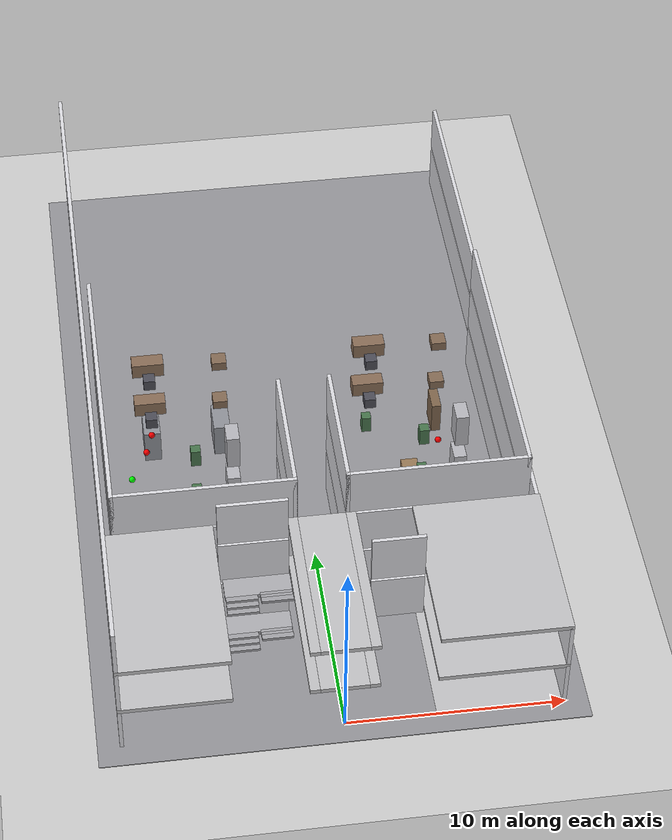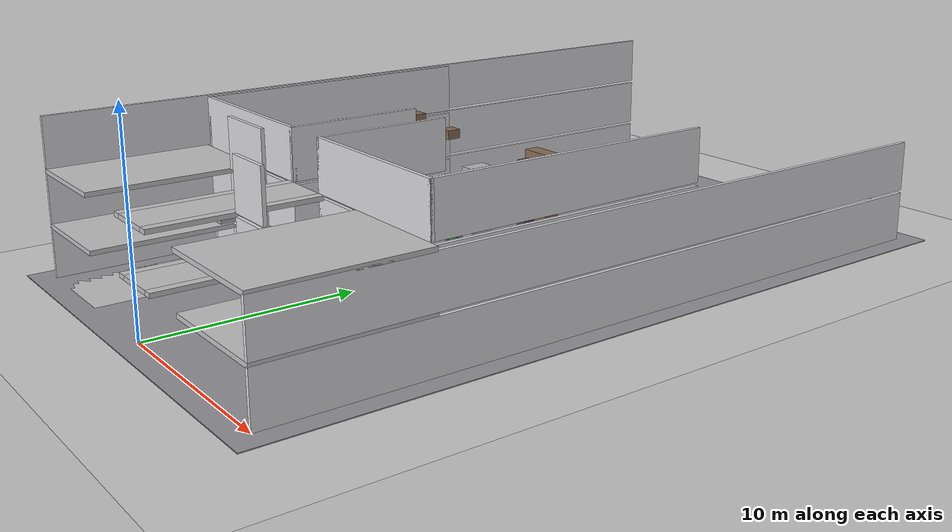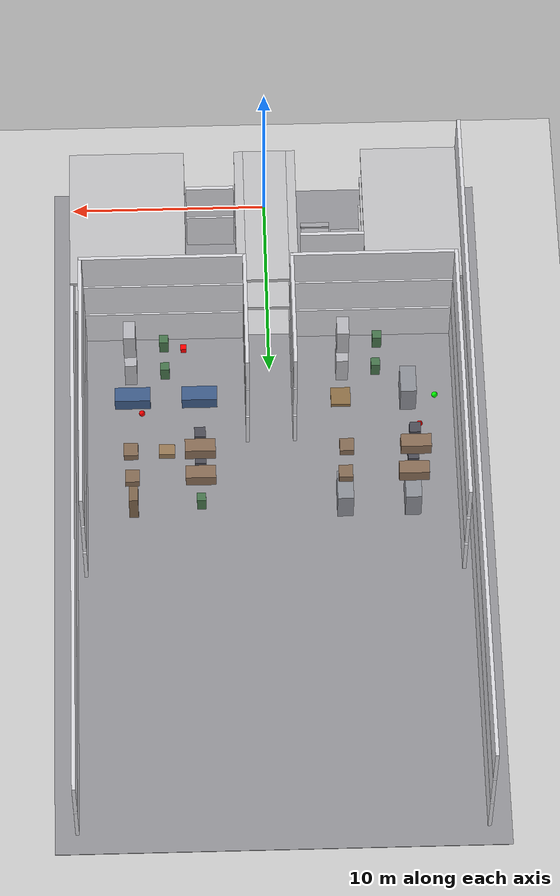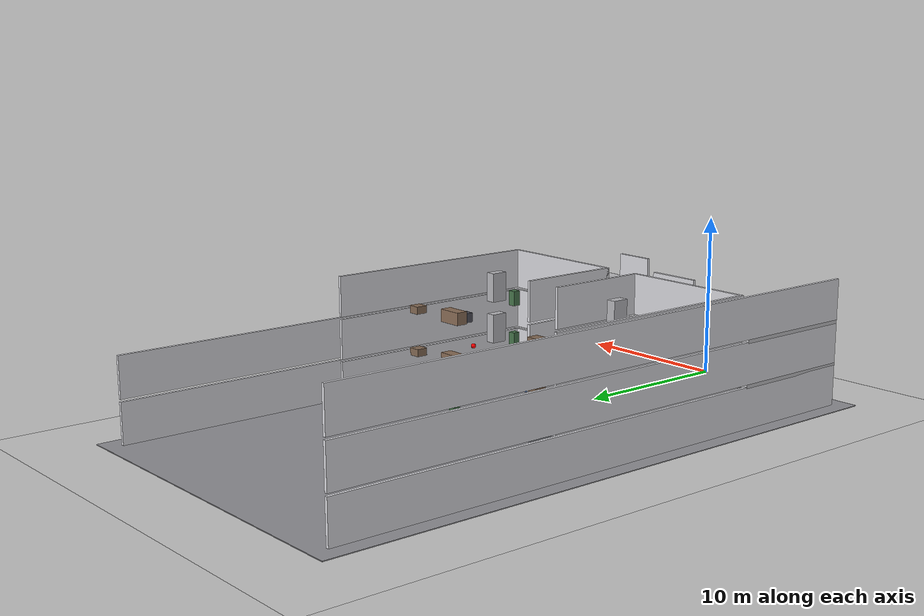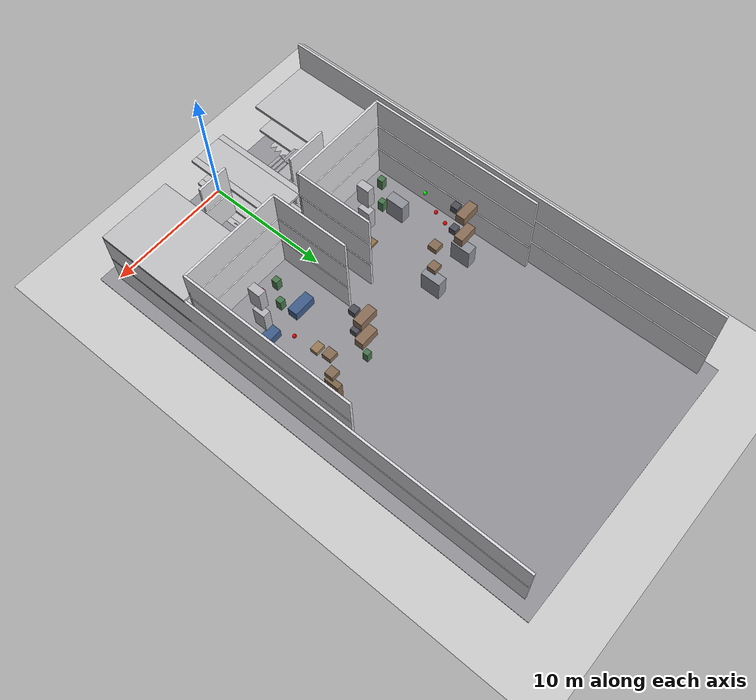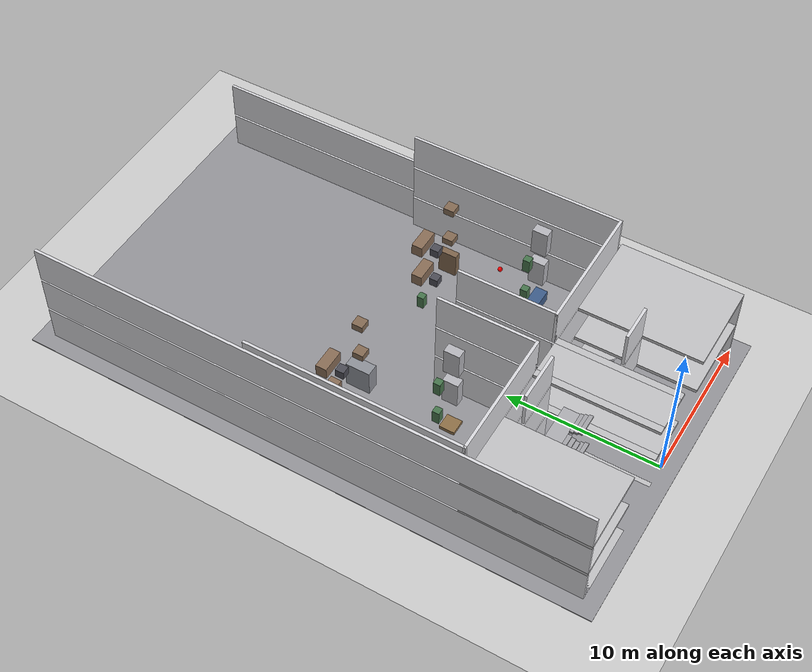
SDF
<sdf version="1.7">
 <world name="generated_world">
  <include><uri>model://sun</uri></include>
  <include><uri>model://ground_plane</uri></include>
  <model name="generated_building">
   <static>true</static>
   <link name="foundation">
    <pose>0.0000 18.0000 -0.1500 0.0000 0.0000 0.0000</pose>
    <collision name="foundation_collision">
     <geometry><box><size>22.0000 38.0000 0.3000</size></box></geometry>
    </collision>
    <visual name="foundation_visual">
     <geometry><box><size>22.0000 38.0000 0.3000</size></box></geometry>
     <material><ambient>0.58 0.58 0.60 1</ambient><diffuse>0.58 0.58 0.60 1</diffuse></material>
    </visual>
    <gravity>false</gravity>
   </link>
   <link name="slab_floor_0_1">
    <pose>-7.4700 3.9250 -0.1100 0.0000 0.0000 0.0000</pose>
    <collision name="slab_floor_0_1_collision">
     <geometry><box><size>5.0600 7.8500 0.2200</size></box></geometry>
    </collision>
    <visual name="slab_floor_0_1_visual">
     <geometry><box><size>5.0600 7.8500 0.2200</size></box></geometry>
     <material><ambient>0.76 0.76 0.77 1</ambient><diffuse>0.76 0.76 0.77 1</diffuse></material>
    </visual>
    <gravity>false</gravity>
   </link>
   <link name="slab_floor_0_2">
    <pose>-1.3300 3.9250 -0.1100 0.0000 0.0000 0.0000</pose>
    <collision name="slab_floor_0_2_collision">
     <geometry><box><size>0.4600 7.8500 0.2200</size></box></geometry>
    </collision>
    <visual name="slab_floor_0_2_visual">
     <geometry><box><size>0.4600 7.8500 0.2200</size></box></geometry>
     <material><ambient>0.76 0.76 0.77 1</ambient><diffuse>0.76 0.76 0.77 1</diffuse></material>
    </visual>
    <gravity>false</gravity>
   </link>
   <link name="slab_floor_0_3">
    <pose>0.0000 3.9250 -0.1100 0.0000 0.0000 0.0000</pose>
    <collision name="slab_floor_0_3_collision">
     <geometry><box><size>2.2000 7.8500 0.2200</size></box></geometry>
    </collision>
    <visual name="slab_floor_0_3_visual">
     <geometry><box><size>2.2000 7.8500 0.2200</size></box></geometry>
     <material><ambient>0.76 0.76 0.77 1</ambient><diffuse>0.76 0.76 0.77 1</diffuse></material>
    </visual>
    <gravity>false</gravity>
   </link>
   <link name="slab_floor_0_4">
    <pose>1.3300 3.9250 -0.1100 0.0000 0.0000 0.0000</pose>
    <collision name="slab_floor_0_4_collision">
     <geometry><box><size>0.4600 7.8500 0.2200</size></box></geometry>
    </collision>
    <visual name="slab_floor_0_4_visual">
     <geometry><box><size>0.4600 7.8500 0.2200</size></box></geometry>
     <material><ambient>0.76 0.76 0.77 1</ambient><diffuse>0.76 0.76 0.77 1</diffuse></material>
    </visual>
    <gravity>false</gravity>
   </link>
   <link name="slab_floor_0_5">
    <pose>7.0700 3.9250 -0.1100 0.0000 0.0000 0.0000</pose>
    <collision name="slab_floor_0_5_collision">
     <geometry><box><size>5.8600 7.8500 0.2200</size></box></geometry>
    </collision>
    <visual name="slab_floor_0_5_visual">
     <geometry><box><size>5.8600 7.8500 0.2200</size></box></geometry>
     <material><ambient>0.76 0.76 0.77 1</ambient><diffuse>0.76 0.76 0.77 1</diffuse></material>
    </visual>
    <gravity>false</gravity>
   </link>
   <link name="exterior_west_floor_0">
    <pose>-9.9100 18.0000 1.2250 0.0000 0.0000 0.0000</pose>
    <collision name="exterior_west_floor_0_collision">
     <geometry><box><size>0.1800 36.0000 2.4500</size></box></geometry>
    </collision>
    <visual name="exterior_west_floor_0_visual">
     <geometry><box><size>0.1800 36.0000 2.4500</size></box></geometry>
     <material><ambient>0.86 0.86 0.88 1</ambient><diffuse>0.86 0.86 0.88 1</diffuse></material>
    </visual>
    <gravity>false</gravity>
   </link>
   <link name="exterior_east_floor_0">
    <pose>9.9100 18.0000 1.2250 0.0000 0.0000 0.0000</pose>
    <collision name="exterior_east_floor_0_collision">
     <geometry><box><size>0.1800 36.0000 2.4500</size></box></geometry>
    </collision>
    <visual name="exterior_east_floor_0_visual">
     <geometry><box><size>0.1800 36.0000 2.4500</size></box></geometry>
     <material><ambient>0.86 0.86 0.88 1</ambient><diffuse>0.86 0.86 0.88 1</diffuse></material>
    </visual>
    <gravity>false</gravity>
   </link>
   <link name="floor_0_room_0_corridor_wall_lower">
    <pose>-1.1900 11.0575 1.2250 0.0000 0.0000 0.0000</pose>
    <collision name="floor_0_room_0_corridor_wall_lower_collision">
     <geometry><box><size>0.1800 6.4150 2.4500</size></box></geometry>
    </collision>
    <visual name="floor_0_room_0_corridor_wall_lower_visual">
     <geometry><box><size>0.1800 6.4150 2.4500</size></box></geometry>
     <material><ambient>0.86 0.86 0.88 1</ambient><diffuse>0.86 0.86 0.88 1</diffuse></material>
    </visual>
    <gravity>false</gravity>
   </link>
   <link name="floor_0_room_0_west_wall">
    <pose>-9.4100 14.8650 1.2250 0.0000 0.0000 0.0000</pose>
    <collision name="floor_0_room_0_west_wall_collision">
     <geometry><box><size>0.1800 14.0300 2.4500</size></box></geometry>
    </collision>
    <visual name="floor_0_room_0_west_wall_visual">
     <geometry><box><size>0.1800 14.0300 2.4500</size></box></geometry>
     <material><ambient>0.86 0.86 0.88 1</ambient><diffuse>0.86 0.86 0.88 1</diffuse></material>
    </visual>
    <gravity>false</gravity>
   </link>
   <link name="floor_0_room_0_south_wall">
    <pose>-5.3000 7.9400 1.2250 0.0000 0.0000 0.0000</pose>
    <collision name="floor_0_room_0_south_wall_collision">
     <geometry><box><size>8.4000 0.1800 2.4500</size></box></geometry>
    </collision>
    <visual name="floor_0_room_0_south_wall_visual">
     <geometry><box><size>8.4000 0.1800 2.4500</size></box></geometry>
     <material><ambient>0.86 0.86 0.88 1</ambient><diffuse>0.86 0.86 0.88 1</diffuse></material>
    </visual>
    <gravity>false</gravity>
   </link>
   <link name="floor_0_room_1_corridor_wall_lower">
    <pose>1.1900 11.0575 1.2250 0.0000 0.0000 0.0000</pose>
    <collision name="floor_0_room_1_corridor_wall_lower_collision">
     <geometry><box><size>0.1800 6.4150 2.4500</size></box></geometry>
    </collision>
    <visual name="floor_0_room_1_corridor_wall_lower_visual">
     <geometry><box><size>0.1800 6.4150 2.4500</size></box></geometry>
     <material><ambient>0.86 0.86 0.88 1</ambient><diffuse>0.86 0.86 0.88 1</diffuse></material>
    </visual>
    <gravity>false</gravity>
   </link>
   <link name="floor_0_room_1_east_wall">
    <pose>9.4100 14.8650 1.2250 0.0000 0.0000 0.0000</pose>
    <collision name="floor_0_room_1_east_wall_collision">
     <geometry><box><size>0.1800 14.0300 2.4500</size></box></geometry>
    </collision>
    <visual name="floor_0_room_1_east_wall_visual">
     <geometry><box><size>0.1800 14.0300 2.4500</size></box></geometry>
     <material><ambient>0.86 0.86 0.88 1</ambient><diffuse>0.86 0.86 0.88 1</diffuse></material>
    </visual>
    <gravity>false</gravity>
   </link>
   <link name="floor_0_room_1_south_wall">
    <pose>5.3000 7.9400 1.2250 0.0000 0.0000 0.0000</pose>
    <collision name="floor_0_room_1_south_wall_collision">
     <geometry><box><size>8.4000 0.1800 2.4500</size></box></geometry>
    </collision>
    <visual name="floor_0_room_1_south_wall_visual">
     <geometry><box><size>8.4000 0.1800 2.4500</size></box></geometry>
     <material><ambient>0.86 0.86 0.88 1</ambient><diffuse>0.86 0.86 0.88 1</diffuse></material>
    </visual>
    <gravity>false</gravity>
   </link>
   <link name="stair_core_floor_0_north">
    <pose>-3.2500 6.7600 1.2250 0.0000 0.0000 0.0000</pose>
    <collision name="stair_core_floor_0_north_collision">
     <geometry><box><size>3.2000 0.1800 2.4500</size></box></geometry>
    </collision>
    <visual name="stair_core_floor_0_north_visual">
     <geometry><box><size>3.2000 0.1800 2.4500</size></box></geometry>
     <material><ambient>0.86 0.86 0.88 1</ambient><diffuse>0.86 0.86 0.88 1</diffuse></material>
    </visual>
    <gravity>false</gravity>
   </link>
   <link name="floor_0_room_0_rack_a">
    <pose>-7.0000 17.9225 0.9000 0.0000 0.0000 0.0000</pose>
    <collision name="floor_0_room_0_rack_a_collision">
     <geometry><box><size>0.8000 1.6000 1.8000</size></box></geometry>
    </collision>
    <visual name="floor_0_room_0_rack_a_visual">
     <geometry><box><size>0.8000 1.6000 1.8000</size></box></geometry>
     <material><ambient>0.56 0.57 0.60 1</ambient><diffuse>0.56 0.57 0.60 1</diffuse></material>
    </visual>
    <gravity>false</gravity>
   </link>
   <link name="floor_0_room_0_rack_b">
    <pose>-3.6000 17.9225 0.9000 0.0000 0.0000 0.0000</pose>
    <collision name="floor_0_room_0_rack_b_collision">
     <geometry><box><size>0.8000 1.6000 1.8000</size></box></geometry>
    </collision>
    <visual name="floor_0_room_0_rack_b_visual">
     <geometry><box><size>0.8000 1.6000 1.8000</size></box></geometry>
     <material><ambient>0.56 0.57 0.60 1</ambient><diffuse>0.56 0.57 0.60 1</diffuse></material>
    </visual>
    <gravity>false</gravity>
   </link>
   <link name="floor_0_room_0_rack_c">
    <pose>-7.0000 11.8075 0.9000 0.0000 0.0000 0.0000</pose>
    <collision name="floor_0_room_0_rack_c_collision">
     <geometry><box><size>0.8000 1.5000 1.8000</size></box></geometry>
    </collision>
    <visual name="floor_0_room_0_rack_c_visual">
     <geometry><box><size>0.8000 1.5000 1.8000</size></box></geometry>
     <material><ambient>0.56 0.57 0.60 1</ambient><diffuse>0.56 0.57 0.60 1</diffuse></material>
    </visual>
    <gravity>false</gravity>
   </link>
   <link name="floor_0_room_0_pallet">
    <pose>-3.6000 11.8075 0.1200 0.0000 0.0000 0.0000</pose>
    <collision name="floor_0_room_0_pallet_collision">
     <geometry><box><size>1.0000 1.0000 0.2400</size></box></geometry>
    </collision>
    <visual name="floor_0_room_0_pallet_visual">
     <geometry><box><size>1.0000 1.0000 0.2400</size></box></geometry>
     <material><ambient>0.56 0.44 0.28 1</ambient><diffuse>0.56 0.44 0.28 1</diffuse></material>
    </visual>
    <gravity>false</gravity>
   </link>
   <link name="floor_0_room_1_sofa_a">
    <pose>3.6000 11.8075 0.4500 0.0000 0.0000 0.0000</pose>
    <collision name="floor_0_room_1_sofa_a_collision">
     <geometry><box><size>1.8000 0.8000 0.8000</size></box></geometry>
    </collision>
    <visual name="floor_0_room_1_sofa_a_visual">
     <geometry><box><size>1.8000 0.8000 0.8000</size></box></geometry>
     <material><ambient>0.24 0.36 0.54 1</ambient><diffuse>0.24 0.36 0.54 1</diffuse></material>
    </visual>
    <gravity>false</gravity>
   </link>
   <link name="floor_0_room_1_sofa_b">
    <pose>7.0000 11.8075 0.4500 0.0000 0.0000 3.1400</pose>
    <collision name="floor_0_room_1_sofa_b_collision">
     <geometry><box><size>1.8000 0.8000 0.8000</size></box></geometry>
    </collision>
    <visual name="floor_0_room_1_sofa_b_visual">
     <geometry><box><size>1.8000 0.8000 0.8000</size></box></geometry>
     <material><ambient>0.24 0.36 0.54 1</ambient><diffuse>0.24 0.36 0.54 1</diffuse></material>
    </visual>
    <gravity>false</gravity>
   </link>
   <link name="floor_0_room_1_coffee_table">
    <pose>5.3000 14.8650 0.2500 0.0000 0.0000 0.0000</pose>
    <collision name="floor_0_room_1_coffee_table_collision">
     <geometry><box><size>0.8000 0.6000 0.4000</size></box></geometry>
    </collision>
    <visual name="floor_0_room_1_coffee_table_visual">
     <geometry><box><size>0.8000 0.6000 0.4000</size></box></geometry>
     <material><ambient>0.60 0.48 0.34 1</ambient><diffuse>0.60 0.48 0.34 1</diffuse></material>
    </visual>
    <gravity>false</gravity>
   </link>
   <link name="floor_0_room_1_bookshelf">
    <pose>7.0000 17.9225 0.8500 0.0000 0.0000 0.0000</pose>
    <collision name="floor_0_room_1_bookshelf_collision">
     <geometry><box><size>0.4500 1.2000 1.7000</size></box></geometry>
    </collision>
    <visual name="floor_0_room_1_bookshelf_visual">
     <geometry><box><size>0.4500 1.2000 1.7000</size></box></geometry>
     <material><ambient>0.50 0.40 0.30 1</ambient><diffuse>0.50 0.40 0.30 1</diffuse></material>
    </visual>
    <gravity>false</gravity>
   </link>
   <link name="floor_0_room_1_planter">
    <pose>3.6000 17.9225 0.4500 0.0000 0.0000 0.0000</pose>
    <collision name="floor_0_room_1_planter_collision">
     <geometry><box><size>0.4500 0.4500 0.9000</size></box></geometry>
    </collision>
    <visual name="floor_0_room_1_planter_visual">
     <geometry><box><size>0.4500 0.4500 0.9000</size></box></geometry>
     <material><ambient>0.28 0.46 0.30 1</ambient><diffuse>0.28 0.46 0.30 1</diffuse></material>
    </visual>
    <gravity>false</gravity>
   </link>
   <link name="slab_floor_1_1">
    <pose>-7.4700 3.9250 2.4900 0.0000 0.0000 0.0000</pose>
    <collision name="slab_floor_1_1_collision">
     <geometry><box><size>5.0600 7.8500 0.2200</size></box></geometry>
    </collision>
    <visual name="slab_floor_1_1_visual">
     <geometry><box><size>5.0600 7.8500 0.2200</size></box></geometry>
     <material><ambient>0.76 0.76 0.77 1</ambient><diffuse>0.76 0.76 0.77 1</diffuse></material>
    </visual>
    <gravity>false</gravity>
   </link>
   <link name="slab_floor_1_2">
    <pose>-1.3300 3.9250 2.4900 0.0000 0.0000 0.0000</pose>
    <collision name="slab_floor_1_2_collision">
     <geometry><box><size>0.4600 7.8500 0.2200</size></box></geometry>
    </collision>
    <visual name="slab_floor_1_2_visual">
     <geometry><box><size>0.4600 7.8500 0.2200</size></box></geometry>
     <material><ambient>0.76 0.76 0.77 1</ambient><diffuse>0.76 0.76 0.77 1</diffuse></material>
    </visual>
    <gravity>false</gravity>
   </link>
   <link name="slab_floor_1_3">
    <pose>0.0000 3.9250 2.4900 0.0000 0.0000 0.0000</pose>
    <collision name="slab_floor_1_3_collision">
     <geometry><box><size>2.2000 7.8500 0.2200</size></box></geometry>
    </collision>
    <visual name="slab_floor_1_3_visual">
     <geometry><box><size>2.2000 7.8500 0.2200</size></box></geometry>
     <material><ambient>0.76 0.76 0.77 1</ambient><diffuse>0.76 0.76 0.77 1</diffuse></material>
    </visual>
    <gravity>false</gravity>
   </link>
   <link name="slab_floor_1_4">
    <pose>1.3300 3.9250 2.4900 0.0000 0.0000 0.0000</pose>
    <collision name="slab_floor_1_4_collision">
     <geometry><box><size>0.4600 7.8500 0.2200</size></box></geometry>
    </collision>
    <visual name="slab_floor_1_4_visual">
     <geometry><box><size>0.4600 7.8500 0.2200</size></box></geometry>
     <material><ambient>0.76 0.76 0.77 1</ambient><diffuse>0.76 0.76 0.77 1</diffuse></material>
    </visual>
    <gravity>false</gravity>
   </link>
   <link name="slab_floor_1_5">
    <pose>7.0700 3.9250 2.4900 0.0000 0.0000 0.0000</pose>
    <collision name="slab_floor_1_5_collision">
     <geometry><box><size>5.8600 7.8500 0.2200</size></box></geometry>
    </collision>
    <visual name="slab_floor_1_5_visual">
     <geometry><box><size>5.8600 7.8500 0.2200</size></box></geometry>
     <material><ambient>0.76 0.76 0.77 1</ambient><diffuse>0.76 0.76 0.77 1</diffuse></material>
    </visual>
    <gravity>false</gravity>
   </link>
   <link name="exterior_west_floor_1">
    <pose>-9.9100 18.0000 3.8250 0.0000 0.0000 0.0000</pose>
    <collision name="exterior_west_floor_1_collision">
     <geometry><box><size>0.1800 36.0000 2.4500</size></box></geometry>
    </collision>
    <visual name="exterior_west_floor_1_visual">
     <geometry><box><size>0.1800 36.0000 2.4500</size></box></geometry>
     <material><ambient>0.86 0.86 0.88 1</ambient><diffuse>0.86 0.86 0.88 1</diffuse></material>
    </visual>
    <gravity>false</gravity>
   </link>
   <link name="exterior_east_floor_1">
    <pose>9.9100 18.0000 3.8250 0.0000 0.0000 0.0000</pose>
    <collision name="exterior_east_floor_1_collision">
     <geometry><box><size>0.1800 36.0000 2.4500</size></box></geometry>
    </collision>
    <visual name="exterior_east_floor_1_visual">
     <geometry><box><size>0.1800 36.0000 2.4500</size></box></geometry>
     <material><ambient>0.86 0.86 0.88 1</ambient><diffuse>0.86 0.86 0.88 1</diffuse></material>
    </visual>
    <gravity>false</gravity>
   </link>
   <link name="floor_1_room_0_corridor_wall_lower">
    <pose>-1.1900 11.0575 3.8250 0.0000 0.0000 0.0000</pose>
    <collision name="floor_1_room_0_corridor_wall_lower_collision">
     <geometry><box><size>0.1800 6.4150 2.4500</size></box></geometry>
    </collision>
    <visual name="floor_1_room_0_corridor_wall_lower_visual">
     <geometry><box><size>0.1800 6.4150 2.4500</size></box></geometry>
     <material><ambient>0.86 0.86 0.88 1</ambient><diffuse>0.86 0.86 0.88 1</diffuse></material>
    </visual>
    <gravity>false</gravity>
   </link>
   <link name="floor_1_room_0_west_wall">
    <pose>-9.4100 14.8650 3.8250 0.0000 0.0000 0.0000</pose>
    <collision name="floor_1_room_0_west_wall_collision">
     <geometry><box><size>0.1800 14.0300 2.4500</size></box></geometry>
    </collision>
    <visual name="floor_1_room_0_west_wall_visual">
     <geometry><box><size>0.1800 14.0300 2.4500</size></box></geometry>
     <material><ambient>0.86 0.86 0.88 1</ambient><diffuse>0.86 0.86 0.88 1</diffuse></material>
    </visual>
    <gravity>false</gravity>
   </link>
   <link name="floor_1_room_0_south_wall">
    <pose>-5.3000 7.9400 3.8250 0.0000 0.0000 0.0000</pose>
    <collision name="floor_1_room_0_south_wall_collision">
     <geometry><box><size>8.4000 0.1800 2.4500</size></box></geometry>
    </collision>
    <visual name="floor_1_room_0_south_wall_visual">
     <geometry><box><size>8.4000 0.1800 2.4500</size></box></geometry>
     <material><ambient>0.86 0.86 0.88 1</ambient><diffuse>0.86 0.86 0.88 1</diffuse></material>
    </visual>
    <gravity>false</gravity>
   </link>
   <link name="floor_1_room_1_corridor_wall_lower">
    <pose>1.1900 11.0575 3.8250 0.0000 0.0000 0.0000</pose>
    <collision name="floor_1_room_1_corridor_wall_lower_collision">
     <geometry><box><size>0.1800 6.4150 2.4500</size></box></geometry>
    </collision>
    <visual name="floor_1_room_1_corridor_wall_lower_visual">
     <geometry><box><size>0.1800 6.4150 2.4500</size></box></geometry>
     <material><ambient>0.86 0.86 0.88 1</ambient><diffuse>0.86 0.86 0.88 1</diffuse></material>
    </visual>
    <gravity>false</gravity>
   </link>
   <link name="floor_1_room_1_east_wall">
    <pose>9.4100 14.8650 3.8250 0.0000 0.0000 0.0000</pose>
    <collision name="floor_1_room_1_east_wall_collision">
     <geometry><box><size>0.1800 14.0300 2.4500</size></box></geometry>
    </collision>
    <visual name="floor_1_room_1_east_wall_visual">
     <geometry><box><size>0.1800 14.0300 2.4500</size></box></geometry>
     <material><ambient>0.86 0.86 0.88 1</ambient><diffuse>0.86 0.86 0.88 1</diffuse></material>
    </visual>
    <gravity>false</gravity>
   </link>
   <link name="floor_1_room_1_south_wall">
    <pose>5.3000 7.9400 3.8250 0.0000 0.0000 0.0000</pose>
    <collision name="floor_1_room_1_south_wall_collision">
     <geometry><box><size>8.4000 0.1800 2.4500</size></box></geometry>
    </collision>
    <visual name="floor_1_room_1_south_wall_visual">
     <geometry><box><size>8.4000 0.1800 2.4500</size></box></geometry>
     <material><ambient>0.86 0.86 0.88 1</ambient><diffuse>0.86 0.86 0.88 1</diffuse></material>
    </visual>
    <gravity>false</gravity>
   </link>
   <link name="stair_core_floor_1_north">
    <pose>-3.2500 6.7600 3.8250 0.0000 0.0000 0.0000</pose>
    <collision name="stair_core_floor_1_north_collision">
     <geometry><box><size>3.2000 0.1800 2.4500</size></box></geometry>
    </collision>
    <visual name="stair_core_floor_1_north_visual">
     <geometry><box><size>3.2000 0.1800 2.4500</size></box></geometry>
     <material><ambient>0.86 0.86 0.88 1</ambient><diffuse>0.86 0.86 0.88 1</diffuse></material>
    </visual>
    <gravity>false</gravity>
   </link>
   <link name="elevator_core_floor_1_north">
    <pose>2.8500 3.8600 3.8250 0.0000 0.0000 0.0000</pose>
    <collision name="elevator_core_floor_1_north_collision">
     <geometry><box><size>2.4000 0.1800 2.4500</size></box></geometry>
    </collision>
    <visual name="elevator_core_floor_1_north_visual">
     <geometry><box><size>2.4000 0.1800 2.4500</size></box></geometry>
     <material><ambient>0.86 0.86 0.88 1</ambient><diffuse>0.86 0.86 0.88 1</diffuse></material>
    </visual>
    <gravity>false</gravity>
   </link>
   <link name="floor_1_room_0_desk">
    <pose>-7.0000 17.9225 3.0500 0.0000 0.0000 0.0000</pose>
    <collision name="floor_1_room_0_desk_collision">
     <geometry><box><size>1.5000 0.7000 0.7500</size></box></geometry>
    </collision>
    <visual name="floor_1_room_0_desk_visual">
     <geometry><box><size>1.5000 0.7000 0.7500</size></box></geometry>
     <material><ambient>0.54 0.43 0.34 1</ambient><diffuse>0.54 0.43 0.34 1</diffuse></material>
    </visual>
    <gravity>false</gravity>
   </link>
   <link name="floor_1_room_0_chair">
    <pose>-7.0000 17.0225 2.8800 0.0000 0.0000 0.0000</pose>
    <collision name="floor_1_room_0_chair_collision">
     <geometry><box><size>0.5500 0.5500 0.5500</size></box></geometry>
    </collision>
    <visual name="floor_1_room_0_chair_visual">
     <geometry><box><size>0.5500 0.5500 0.5500</size></box></geometry>
     <material><ambient>0.30 0.30 0.34 1</ambient><diffuse>0.30 0.30 0.34 1</diffuse></material>
    </visual>
    <gravity>false</gravity>
   </link>
   <link name="floor_1_room_0_cabinet">
    <pose>-3.6000 11.8075 3.5000 0.0000 0.0000 0.0000</pose>
    <collision name="floor_1_room_0_cabinet_collision">
     <geometry><box><size>0.6000 1.0000 1.8000</size></box></geometry>
    </collision>
    <visual name="floor_1_room_0_cabinet_visual">
     <geometry><box><size>0.6000 1.0000 1.8000</size></box></geometry>
     <material><ambient>0.72 0.72 0.74 1</ambient><diffuse>0.72 0.72 0.74 1</diffuse></material>
    </visual>
    <gravity>false</gravity>
   </link>
   <link name="floor_1_room_0_side_table">
    <pose>-3.6000 17.9225 2.9200 0.0000 0.0000 0.0000</pose>
    <collision name="floor_1_room_0_side_table_collision">
     <geometry><box><size>0.7000 0.7000 0.4500</size></box></geometry>
    </collision>
    <visual name="floor_1_room_0_side_table_visual">
     <geometry><box><size>0.7000 0.7000 0.4500</size></box></geometry>
     <material><ambient>0.52 0.42 0.33 1</ambient><diffuse>0.52 0.42 0.33 1</diffuse></material>
    </visual>
    <gravity>false</gravity>
   </link>
   <link name="floor_1_room_0_planter">
    <pose>-5.3000 11.8075 3.0500 0.0000 0.0000 0.0000</pose>
    <collision name="floor_1_room_0_planter_collision">
     <geometry><box><size>0.4500 0.4500 0.9000</size></box></geometry>
    </collision>
    <visual name="floor_1_room_0_planter_visual">
     <geometry><box><size>0.4500 0.4500 0.9000</size></box></geometry>
     <material><ambient>0.28 0.46 0.30 1</ambient><diffuse>0.28 0.46 0.30 1</diffuse></material>
    </visual>
    <gravity>false</gravity>
   </link>
   <link name="floor_1_room_1_desk">
    <pose>3.6000 17.9225 3.0500 0.0000 0.0000 0.0000</pose>
    <collision name="floor_1_room_1_desk_collision">
     <geometry><box><size>1.5000 0.7000 0.7500</size></box></geometry>
    </collision>
    <visual name="floor_1_room_1_desk_visual">
     <geometry><box><size>1.5000 0.7000 0.7500</size></box></geometry>
     <material><ambient>0.54 0.43 0.34 1</ambient><diffuse>0.54 0.43 0.34 1</diffuse></material>
    </visual>
    <gravity>false</gravity>
   </link>
   <link name="floor_1_room_1_chair">
    <pose>3.6000 17.0225 2.8800 0.0000 0.0000 0.0000</pose>
    <collision name="floor_1_room_1_chair_collision">
     <geometry><box><size>0.5500 0.5500 0.5500</size></box></geometry>
    </collision>
    <visual name="floor_1_room_1_chair_visual">
     <geometry><box><size>0.5500 0.5500 0.5500</size></box></geometry>
     <material><ambient>0.30 0.30 0.34 1</ambient><diffuse>0.30 0.30 0.34 1</diffuse></material>
    </visual>
    <gravity>false</gravity>
   </link>
   <link name="floor_1_room_1_cabinet">
    <pose>7.0000 11.8075 3.5000 0.0000 0.0000 0.0000</pose>
    <collision name="floor_1_room_1_cabinet_collision">
     <geometry><box><size>0.6000 1.0000 1.8000</size></box></geometry>
    </collision>
    <visual name="floor_1_room_1_cabinet_visual">
     <geometry><box><size>0.6000 1.0000 1.8000</size></box></geometry>
     <material><ambient>0.72 0.72 0.74 1</ambient><diffuse>0.72 0.72 0.74 1</diffuse></material>
    </visual>
    <gravity>false</gravity>
   </link>
   <link name="floor_1_room_1_side_table">
    <pose>7.0000 17.9225 2.9200 0.0000 0.0000 0.0000</pose>
    <collision name="floor_1_room_1_side_table_collision">
     <geometry><box><size>0.7000 0.7000 0.4500</size></box></geometry>
    </collision>
    <visual name="floor_1_room_1_side_table_visual">
     <geometry><box><size>0.7000 0.7000 0.4500</size></box></geometry>
     <material><ambient>0.52 0.42 0.33 1</ambient><diffuse>0.52 0.42 0.33 1</diffuse></material>
    </visual>
    <gravity>false</gravity>
   </link>
   <link name="floor_1_room_1_planter">
    <pose>5.3000 11.8075 3.0500 0.0000 0.0000 0.0000</pose>
    <collision name="floor_1_room_1_planter_collision">
     <geometry><box><size>0.4500 0.4500 0.9000</size></box></geometry>
    </collision>
    <visual name="floor_1_room_1_planter_visual">
     <geometry><box><size>0.4500 0.4500 0.9000</size></box></geometry>
     <material><ambient>0.28 0.46 0.30 1</ambient><diffuse>0.28 0.46 0.30 1</diffuse></material>
    </visual>
    <gravity>false</gravity>
   </link>
   <link name="slab_floor_2_1">
    <pose>-7.4700 3.9250 5.0900 0.0000 0.0000 0.0000</pose>
    <collision name="slab_floor_2_1_collision">
     <geometry><box><size>5.0600 7.8500 0.2200</size></box></geometry>
    </collision>
    <visual name="slab_floor_2_1_visual">
     <geometry><box><size>5.0600 7.8500 0.2200</size></box></geometry>
     <material><ambient>0.76 0.76 0.77 1</ambient><diffuse>0.76 0.76 0.77 1</diffuse></material>
    </visual>
    <gravity>false</gravity>
   </link>
   <link name="slab_floor_2_2">
    <pose>-1.3300 3.9250 5.0900 0.0000 0.0000 0.0000</pose>
    <collision name="slab_floor_2_2_collision">
     <geometry><box><size>0.4600 7.8500 0.2200</size></box></geometry>
    </collision>
    <visual name="slab_floor_2_2_visual">
     <geometry><box><size>0.4600 7.8500 0.2200</size></box></geometry>
     <material><ambient>0.76 0.76 0.77 1</ambient><diffuse>0.76 0.76 0.77 1</diffuse></material>
    </visual>
    <gravity>false</gravity>
   </link>
   <link name="slab_floor_2_3">
    <pose>0.0000 3.9250 5.0900 0.0000 0.0000 0.0000</pose>
    <collision name="slab_floor_2_3_collision">
     <geometry><box><size>2.2000 7.8500 0.2200</size></box></geometry>
    </collision>
    <visual name="slab_floor_2_3_visual">
     <geometry><box><size>2.2000 7.8500 0.2200</size></box></geometry>
     <material><ambient>0.76 0.76 0.77 1</ambient><diffuse>0.76 0.76 0.77 1</diffuse></material>
    </visual>
    <gravity>false</gravity>
   </link>
   <link name="slab_floor_2_4">
    <pose>1.3300 3.9250 5.0900 0.0000 0.0000 0.0000</pose>
    <collision name="slab_floor_2_4_collision">
     <geometry><box><size>0.4600 7.8500 0.2200</size></box></geometry>
    </collision>
    <visual name="slab_floor_2_4_visual">
     <geometry><box><size>0.4600 7.8500 0.2200</size></box></geometry>
     <material><ambient>0.76 0.76 0.77 1</ambient><diffuse>0.76 0.76 0.77 1</diffuse></material>
    </visual>
    <gravity>false</gravity>
   </link>
   <link name="slab_floor_2_5">
    <pose>7.0700 3.9250 5.0900 0.0000 0.0000 0.0000</pose>
    <collision name="slab_floor_2_5_collision">
     <geometry><box><size>5.8600 7.8500 0.2200</size></box></geometry>
    </collision>
    <visual name="slab_floor_2_5_visual">
     <geometry><box><size>5.8600 7.8500 0.2200</size></box></geometry>
     <material><ambient>0.76 0.76 0.77 1</ambient><diffuse>0.76 0.76 0.77 1</diffuse></material>
    </visual>
    <gravity>false</gravity>
   </link>
   <link name="exterior_west_floor_2">
    <pose>-9.9100 18.0000 6.4250 0.0000 0.0000 0.0000</pose>
    <collision name="exterior_west_floor_2_collision">
     <geometry><box><size>0.1800 36.0000 2.4500</size></box></geometry>
    </collision>
    <visual name="exterior_west_floor_2_visual">
     <geometry><box><size>0.1800 36.0000 2.4500</size></box></geometry>
     <material><ambient>0.86 0.86 0.88 1</ambient><diffuse>0.86 0.86 0.88 1</diffuse></material>
    </visual>
    <gravity>false</gravity>
   </link>
   <link name="floor_2_room_0_corridor_wall_lower">
    <pose>-1.1900 11.0575 6.4250 0.0000 0.0000 0.0000</pose>
    <collision name="floor_2_room_0_corridor_wall_lower_collision">
     <geometry><box><size>0.1800 6.4150 2.4500</size></box></geometry>
    </collision>
    <visual name="floor_2_room_0_corridor_wall_lower_visual">
     <geometry><box><size>0.1800 6.4150 2.4500</size></box></geometry>
     <material><ambient>0.86 0.86 0.88 1</ambient><diffuse>0.86 0.86 0.88 1</diffuse></material>
    </visual>
    <gravity>false</gravity>
   </link>
   <link name="floor_2_room_0_west_wall">
    <pose>-9.4100 14.8650 6.4250 0.0000 0.0000 0.0000</pose>
    <collision name="floor_2_room_0_west_wall_collision">
     <geometry><box><size>0.1800 14.0300 2.4500</size></box></geometry>
    </collision>
    <visual name="floor_2_room_0_west_wall_visual">
     <geometry><box><size>0.1800 14.0300 2.4500</size></box></geometry>
     <material><ambient>0.86 0.86 0.88 1</ambient><diffuse>0.86 0.86 0.88 1</diffuse></material>
    </visual>
    <gravity>false</gravity>
   </link>
   <link name="floor_2_room_0_south_wall">
    <pose>-5.3000 7.9400 6.4250 0.0000 0.0000 0.0000</pose>
    <collision name="floor_2_room_0_south_wall_collision">
     <geometry><box><size>8.4000 0.1800 2.4500</size></box></geometry>
    </collision>
    <visual name="floor_2_room_0_south_wall_visual">
     <geometry><box><size>8.4000 0.1800 2.4500</size></box></geometry>
     <material><ambient>0.86 0.86 0.88 1</ambient><diffuse>0.86 0.86 0.88 1</diffuse></material>
    </visual>
    <gravity>false</gravity>
   </link>
   <link name="floor_2_room_1_corridor_wall_lower">
    <pose>1.1900 11.0575 6.4250 0.0000 0.0000 0.0000</pose>
    <collision name="floor_2_room_1_corridor_wall_lower_collision">
     <geometry><box><size>0.1800 6.4150 2.4500</size></box></geometry>
    </collision>
    <visual name="floor_2_room_1_corridor_wall_lower_visual">
     <geometry><box><size>0.1800 6.4150 2.4500</size></box></geometry>
     <material><ambient>0.86 0.86 0.88 1</ambient><diffuse>0.86 0.86 0.88 1</diffuse></material>
    </visual>
    <gravity>false</gravity>
   </link>
   <link name="floor_2_room_1_east_wall">
    <pose>9.4100 14.8650 6.4250 0.0000 0.0000 0.0000</pose>
    <collision name="floor_2_room_1_east_wall_collision">
     <geometry><box><size>0.1800 14.0300 2.4500</size></box></geometry>
    </collision>
    <visual name="floor_2_room_1_east_wall_visual">
     <geometry><box><size>0.1800 14.0300 2.4500</size></box></geometry>
     <material><ambient>0.86 0.86 0.88 1</ambient><diffuse>0.86 0.86 0.88 1</diffuse></material>
    </visual>
    <gravity>false</gravity>
   </link>
   <link name="floor_2_room_1_south_wall">
    <pose>5.3000 7.9400 6.4250 0.0000 0.0000 0.0000</pose>
    <collision name="floor_2_room_1_south_wall_collision">
     <geometry><box><size>8.4000 0.1800 2.4500</size></box></geometry>
    </collision>
    <visual name="floor_2_room_1_south_wall_visual">
     <geometry><box><size>8.4000 0.1800 2.4500</size></box></geometry>
     <material><ambient>0.86 0.86 0.88 1</ambient><diffuse>0.86 0.86 0.88 1</diffuse></material>
    </visual>
    <gravity>false</gravity>
   </link>
   <link name="stair_core_floor_2_north">
    <pose>-3.2500 6.7600 6.4250 0.0000 0.0000 0.0000</pose>
    <collision name="stair_core_floor_2_north_collision">
     <geometry><box><size>3.2000 0.1800 2.4500</size></box></geometry>
    </collision>
    <visual name="stair_core_floor_2_north_visual">
     <geometry><box><size>3.2000 0.1800 2.4500</size></box></geometry>
     <material><ambient>0.86 0.86 0.88 1</ambient><diffuse>0.86 0.86 0.88 1</diffuse></material>
    </visual>
    <gravity>false</gravity>
   </link>
   <link name="elevator_core_floor_2_north">
    <pose>2.8500 3.8600 6.4250 0.0000 0.0000 0.0000</pose>
    <collision name="elevator_core_floor_2_north_collision">
     <geometry><box><size>2.4000 0.1800 2.4500</size></box></geometry>
    </collision>
    <visual name="elevator_core_floor_2_north_visual">
     <geometry><box><size>2.4000 0.1800 2.4500</size></box></geometry>
     <material><ambient>0.86 0.86 0.88 1</ambient><diffuse>0.86 0.86 0.88 1</diffuse></material>
    </visual>
    <gravity>false</gravity>
   </link>
   <link name="floor_2_room_0_desk">
    <pose>-7.0000 17.9225 5.6500 0.0000 0.0000 0.0000</pose>
    <collision name="floor_2_room_0_desk_collision">
     <geometry><box><size>1.5000 0.7000 0.7500</size></box></geometry>
    </collision>
    <visual name="floor_2_room_0_desk_visual">
     <geometry><box><size>1.5000 0.7000 0.7500</size></box></geometry>
     <material><ambient>0.54 0.43 0.34 1</ambient><diffuse>0.54 0.43 0.34 1</diffuse></material>
    </visual>
    <gravity>false</gravity>
   </link>
   <link name="floor_2_room_0_chair">
    <pose>-7.0000 17.0225 5.4800 0.0000 0.0000 0.0000</pose>
    <collision name="floor_2_room_0_chair_collision">
     <geometry><box><size>0.5500 0.5500 0.5500</size></box></geometry>
    </collision>
    <visual name="floor_2_room_0_chair_visual">
     <geometry><box><size>0.5500 0.5500 0.5500</size></box></geometry>
     <material><ambient>0.30 0.30 0.34 1</ambient><diffuse>0.30 0.30 0.34 1</diffuse></material>
    </visual>
    <gravity>false</gravity>
   </link>
   <link name="floor_2_room_0_cabinet">
    <pose>-3.6000 11.8075 6.1000 0.0000 0.0000 0.0000</pose>
    <collision name="floor_2_room_0_cabinet_collision">
     <geometry><box><size>0.6000 1.0000 1.8000</size></box></geometry>
    </collision>
    <visual name="floor_2_room_0_cabinet_visual">
     <geometry><box><size>0.6000 1.0000 1.8000</size></box></geometry>
     <material><ambient>0.72 0.72 0.74 1</ambient><diffuse>0.72 0.72 0.74 1</diffuse></material>
    </visual>
    <gravity>false</gravity>
   </link>
   <link name="floor_2_room_0_side_table">
    <pose>-3.6000 17.9225 5.5200 0.0000 0.0000 0.0000</pose>
    <collision name="floor_2_room_0_side_table_collision">
     <geometry><box><size>0.7000 0.7000 0.4500</size></box></geometry>
    </collision>
    <visual name="floor_2_room_0_side_table_visual">
     <geometry><box><size>0.7000 0.7000 0.4500</size></box></geometry>
     <material><ambient>0.52 0.42 0.33 1</ambient><diffuse>0.52 0.42 0.33 1</diffuse></material>
    </visual>
    <gravity>false</gravity>
   </link>
   <link name="floor_2_room_0_planter">
    <pose>-5.3000 11.8075 5.6500 0.0000 0.0000 0.0000</pose>
    <collision name="floor_2_room_0_planter_collision">
     <geometry><box><size>0.4500 0.4500 0.9000</size></box></geometry>
    </collision>
    <visual name="floor_2_room_0_planter_visual">
     <geometry><box><size>0.4500 0.4500 0.9000</size></box></geometry>
     <material><ambient>0.28 0.46 0.30 1</ambient><diffuse>0.28 0.46 0.30 1</diffuse></material>
    </visual>
    <gravity>false</gravity>
   </link>
   <link name="floor_2_room_1_desk">
    <pose>3.6000 17.9225 5.6500 0.0000 0.0000 0.0000</pose>
    <collision name="floor_2_room_1_desk_collision">
     <geometry><box><size>1.5000 0.7000 0.7500</size></box></geometry>
    </collision>
    <visual name="floor_2_room_1_desk_visual">
     <geometry><box><size>1.5000 0.7000 0.7500</size></box></geometry>
     <material><ambient>0.54 0.43 0.34 1</ambient><diffuse>0.54 0.43 0.34 1</diffuse></material>
    </visual>
    <gravity>false</gravity>
   </link>
   <link name="floor_2_room_1_chair">
    <pose>3.6000 17.0225 5.4800 0.0000 0.0000 0.0000</pose>
    <collision name="floor_2_room_1_chair_collision">
     <geometry><box><size>0.5500 0.5500 0.5500</size></box></geometry>
    </collision>
    <visual name="floor_2_room_1_chair_visual">
     <geometry><box><size>0.5500 0.5500 0.5500</size></box></geometry>
     <material><ambient>0.30 0.30 0.34 1</ambient><diffuse>0.30 0.30 0.34 1</diffuse></material>
    </visual>
    <gravity>false</gravity>
   </link>
   <link name="floor_2_room_1_cabinet">
    <pose>7.0000 11.8075 6.1000 0.0000 0.0000 0.0000</pose>
    <collision name="floor_2_room_1_cabinet_collision">
     <geometry><box><size>0.6000 1.0000 1.8000</size></box></geometry>
    </collision>
    <visual name="floor_2_room_1_cabinet_visual">
     <geometry><box><size>0.6000 1.0000 1.8000</size></box></geometry>
     <material><ambient>0.72 0.72 0.74 1</ambient><diffuse>0.72 0.72 0.74 1</diffuse></material>
    </visual>
    <gravity>false</gravity>
   </link>
   <link name="floor_2_room_1_side_table">
    <pose>7.0000 17.9225 5.5200 0.0000 0.0000 0.0000</pose>
    <collision name="floor_2_room_1_side_table_collision">
     <geometry><box><size>0.7000 0.7000 0.4500</size></box></geometry>
    </collision>
    <visual name="floor_2_room_1_side_table_visual">
     <geometry><box><size>0.7000 0.7000 0.4500</size></box></geometry>
     <material><ambient>0.52 0.42 0.33 1</ambient><diffuse>0.52 0.42 0.33 1</diffuse></material>
    </visual>
    <gravity>false</gravity>
   </link>
   <link name="floor_2_room_1_planter">
    <pose>5.3000 11.8075 5.6500 0.0000 0.0000 0.0000</pose>
    <collision name="floor_2_room_1_planter_collision">
     <geometry><box><size>0.4500 0.4500 0.9000</size></box></geometry>
    </collision>
    <visual name="floor_2_room_1_planter_visual">
     <geometry><box><size>0.4500 0.4500 0.9000</size></box></geometry>
     <material><ambient>0.28 0.46 0.30 1</ambient><diffuse>0.28 0.46 0.30 1</diffuse></material>
    </visual>
    <gravity>false</gravity>
   </link>
   <link name="stair_flight_a_floor_0_step_7">
    <pose>-4.0150 4.0000 0.9750 0.0000 0.0000 0.0000</pose>
    <collision name="stair_flight_a_floor_0_step_7_collision">
     <geometry><box><size>1.4300 0.2600 0.1300</size></box></geometry>
    </collision>
    <visual name="stair_flight_a_floor_0_step_7_visual">
     <geometry><box><size>1.4300 0.2600 0.1300</size></box></geometry>
     <material><ambient>0.64 0.64 0.66 1</ambient><diffuse>0.64 0.64 0.66 1</diffuse></material>
    </visual>
    <gravity>false</gravity>
   </link>
   <link name="stair_flight_a_floor_0_step_8">
    <pose>-4.0150 4.2600 1.1050 0.0000 0.0000 0.0000</pose>
    <collision name="stair_flight_a_floor_0_step_8_collision">
     <geometry><box><size>1.4300 0.2600 0.1300</size></box></geometry>
    </collision>
    <visual name="stair_flight_a_floor_0_step_8_visual">
     <geometry><box><size>1.4300 0.2600 0.1300</size></box></geometry>
     <material><ambient>0.64 0.64 0.66 1</ambient><diffuse>0.64 0.64 0.66 1</diffuse></material>
    </visual>
    <gravity>false</gravity>
   </link>
   <link name="stair_flight_a_floor_0_step_9">
    <pose>-4.0150 4.5200 1.2350 0.0000 0.0000 0.0000</pose>
    <collision name="stair_flight_a_floor_0_step_9_collision">
     <geometry><box><size>1.4300 0.2600 0.1300</size></box></geometry>
    </collision>
    <visual name="stair_flight_a_floor_0_step_9_visual">
     <geometry><box><size>1.4300 0.2600 0.1300</size></box></geometry>
     <material><ambient>0.64 0.64 0.66 1</ambient><diffuse>0.64 0.64 0.66 1</diffuse></material>
    </visual>
    <gravity>false</gravity>
   </link>
   <link name="stair_turn_landing_floor_0">
    <pose>-3.2500 5.1750 1.2100 0.0000 0.0000 0.0000</pose>
    <collision name="stair_turn_landing_floor_0_collision">
     <geometry><box><size>3.0200 1.0500 0.1800</size></box></geometry>
    </collision>
    <visual name="stair_turn_landing_floor_0_visual">
     <geometry><box><size>3.0200 1.0500 0.1800</size></box></geometry>
     <material><ambient>0.68 0.68 0.70 1</ambient><diffuse>0.68 0.68 0.70 1</diffuse></material>
    </visual>
    <gravity>false</gravity>
   </link>
   <link name="stair_flight_b_floor_0_step_0">
    <pose>-2.4850 4.5200 1.3650 0.0000 0.0000 0.0000</pose>
    <collision name="stair_flight_b_floor_0_step_0_collision">
     <geometry><box><size>1.4300 0.2600 0.1300</size></box></geometry>
    </collision>
    <visual name="stair_flight_b_floor_0_step_0_visual">
     <geometry><box><size>1.4300 0.2600 0.1300</size></box></geometry>
     <material><ambient>0.64 0.64 0.66 1</ambient><diffuse>0.64 0.64 0.66 1</diffuse></material>
    </visual>
    <gravity>false</gravity>
   </link>
   <link name="stair_flight_b_floor_0_step_1">
    <pose>-2.4850 4.2600 1.4950 0.0000 0.0000 0.0000</pose>
    <collision name="stair_flight_b_floor_0_step_1_collision">
     <geometry><box><size>1.4300 0.2600 0.1300</size></box></geometry>
    </collision>
    <visual name="stair_flight_b_floor_0_step_1_visual">
     <geometry><box><size>1.4300 0.2600 0.1300</size></box></geometry>
     <material><ambient>0.64 0.64 0.66 1</ambient><diffuse>0.64 0.64 0.66 1</diffuse></material>
    </visual>
    <gravity>false</gravity>
   </link>
   <link name="stair_flight_b_floor_0_step_2">
    <pose>-2.4850 4.0000 1.6250 0.0000 0.0000 0.0000</pose>
    <collision name="stair_flight_b_floor_0_step_2_collision">
     <geometry><box><size>1.4300 0.2600 0.1300</size></box></geometry>
    </collision>
    <visual name="stair_flight_b_floor_0_step_2_visual">
     <geometry><box><size>1.4300 0.2600 0.1300</size></box></geometry>
     <material><ambient>0.64 0.64 0.66 1</ambient><diffuse>0.64 0.64 0.66 1</diffuse></material>
    </visual>
    <gravity>false</gravity>
   </link>
   <link name="stair_flight_a_floor_1_step_7">
    <pose>-4.0150 4.0000 3.5750 0.0000 0.0000 0.0000</pose>
    <collision name="stair_flight_a_floor_1_step_7_collision">
     <geometry><box><size>1.4300 0.2600 0.1300</size></box></geometry>
    </collision>
    <visual name="stair_flight_a_floor_1_step_7_visual">
     <geometry><box><size>1.4300 0.2600 0.1300</size></box></geometry>
     <material><ambient>0.64 0.64 0.66 1</ambient><diffuse>0.64 0.64 0.66 1</diffuse></material>
    </visual>
    <gravity>false</gravity>
   </link>
   <link name="stair_flight_a_floor_1_step_8">
    <pose>-4.0150 4.2600 3.7050 0.0000 0.0000 0.0000</pose>
    <collision name="stair_flight_a_floor_1_step_8_collision">
     <geometry><box><size>1.4300 0.2600 0.1300</size></box></geometry>
    </collision>
    <visual name="stair_flight_a_floor_1_step_8_visual">
     <geometry><box><size>1.4300 0.2600 0.1300</size></box></geometry>
     <material><ambient>0.64 0.64 0.66 1</ambient><diffuse>0.64 0.64 0.66 1</diffuse></material>
    </visual>
    <gravity>false</gravity>
   </link>
   <link name="stair_flight_a_floor_1_step_9">
    <pose>-4.0150 4.5200 3.8350 0.0000 0.0000 0.0000</pose>
    <collision name="stair_flight_a_floor_1_step_9_collision">
     <geometry><box><size>1.4300 0.2600 0.1300</size></box></geometry>
    </collision>
    <visual name="stair_flight_a_floor_1_step_9_visual">
     <geometry><box><size>1.4300 0.2600 0.1300</size></box></geometry>
     <material><ambient>0.64 0.64 0.66 1</ambient><diffuse>0.64 0.64 0.66 1</diffuse></material>
    </visual>
    <gravity>false</gravity>
   </link>
   <link name="stair_turn_landing_floor_1">
    <pose>-3.2500 5.1750 3.8100 0.0000 0.0000 0.0000</pose>
    <collision name="stair_turn_landing_floor_1_collision">
     <geometry><box><size>3.0200 1.0500 0.1800</size></box></geometry>
    </collision>
    <visual name="stair_turn_landing_floor_1_visual">
     <geometry><box><size>3.0200 1.0500 0.1800</size></box></geometry>
     <material><ambient>0.68 0.68 0.70 1</ambient><diffuse>0.68 0.68 0.70 1</diffuse></material>
    </visual>
    <gravity>false</gravity>
   </link>
   <link name="stair_flight_b_floor_1_step_0">
    <pose>-2.4850 4.5200 3.9650 0.0000 0.0000 0.0000</pose>
    <collision name="stair_flight_b_floor_1_step_0_collision">
     <geometry><box><size>1.4300 0.2600 0.1300</size></box></geometry>
    </collision>
    <visual name="stair_flight_b_floor_1_step_0_visual">
     <geometry><box><size>1.4300 0.2600 0.1300</size></box></geometry>
     <material><ambient>0.64 0.64 0.66 1</ambient><diffuse>0.64 0.64 0.66 1</diffuse></material>
    </visual>
    <gravity>false</gravity>
   </link>
   <link name="stair_flight_b_floor_1_step_1">
    <pose>-2.4850 4.2600 4.0950 0.0000 0.0000 0.0000</pose>
    <collision name="stair_flight_b_floor_1_step_1_collision">
     <geometry><box><size>1.4300 0.2600 0.1300</size></box></geometry>
    </collision>
    <visual name="stair_flight_b_floor_1_step_1_visual">
     <geometry><box><size>1.4300 0.2600 0.1300</size></box></geometry>
     <material><ambient>0.64 0.64 0.66 1</ambient><diffuse>0.64 0.64 0.66 1</diffuse></material>
    </visual>
    <gravity>false</gravity>
   </link>
   <link name="stair_flight_b_floor_1_step_2">
    <pose>-2.4850 4.0000 4.2250 0.0000 0.0000 0.0000</pose>
    <collision name="stair_flight_b_floor_1_step_2_collision">
     <geometry><box><size>1.4300 0.2600 0.1300</size></box></geometry>
    </collision>
    <visual name="stair_flight_b_floor_1_step_2_visual">
     <geometry><box><size>1.4300 0.2600 0.1300</size></box></geometry>
     <material><ambient>0.64 0.64 0.66 1</ambient><diffuse>0.64 0.64 0.66 1</diffuse></material>
    </visual>
    <gravity>false</gravity>
   </link>
  </model>
  <model name="distractor_red_box_00">
   <static>true</static>
   <pose>4.361177 8.701933 0.150000 0.000000 0.000000 0.000000</pose>
   <link name="link">
    <collision name="collision">
     <geometry><box><size>0.300000 0.300000 0.300000</size></box></geometry>
    </collision>
    <visual name="visual">
     <geometry><box><size>0.300000 0.300000 0.300000</size></box></geometry>
     <material><ambient>1.0 0.0 0.0 1.0</ambient><diffuse>1.0 0.0 0.0 1.0</diffuse></material>
    </visual>
   </link>
  </model>
  <model name="danger_red_sphere_00">
   <static>true</static>
   <pose>6.481061 14.091930 2.750000 0.000000 0.000000 0.000000</pose>
   <link name="link">
    <collision name="collision"><geometry><sphere><radius>0.150</radius></sphere></geometry></collision>
    <visual name="visual">
     <geometry><sphere><radius>0.150</radius></sphere></geometry>
     <material><ambient>1.0 0.0 0.0 1.0</ambient><diffuse>1.0 0.0 0.0 1.0</diffuse></material>
    </visual>
   </link>
  </model>
  <model name="danger_red_sphere_02">
   <static>true</static>
   <pose>-7.064788 16.144050 2.750000 0.000000 0.000000 0.000000</pose>
   <link name="link">
    <collision name="collision"><geometry><sphere><radius>0.150</radius></sphere></geometry></collision>
    <visual name="visual">
     <geometry><sphere><radius>0.150</radius></sphere></geometry>
     <material><ambient>1.0 0.0 0.0 1.0</ambient><diffuse>1.0 0.0 0.0 1.0</diffuse></material>
    </visual>
   </link>
  </model>
  <model name="danger_red_sphere_03">
   <static>true</static>
   <pose>-7.405228 15.051689 2.750000 0.000000 0.000000 0.000000</pose>
   <link name="link">
    <collision name="collision"><geometry><sphere><radius>0.150</radius></sphere></geometry></collision>
    <visual name="visual">
     <geometry><sphere><radius>0.150</radius></sphere></geometry>
     <material><ambient>1.0 0.0 0.0 1.0</ambient><diffuse>1.0 0.0 0.0 1.0</diffuse></material>
    </visual>
   </link>
  </model>
  <model name="distractor_green_sphere_04">
   <static>true</static>
   <pose>-8.231281 13.377513 2.750000 0.000000 0.000000 0.000000</pose>
   <link name="link">
    <collision name="collision"><geometry><sphere><radius>0.150</radius></sphere></geometry></collision>
    <visual name="visual">
     <geometry><sphere><radius>0.150</radius></sphere></geometry>
     <material><ambient>0.0 1.0 0.0 1.0</ambient><diffuse>0.0 1.0 0.0 1.0</diffuse></material>
    </visual>
   </link>
  </model>
 </world>
</sdf>
